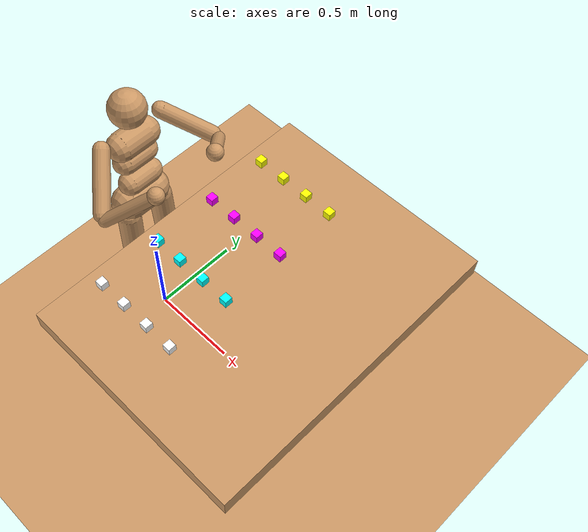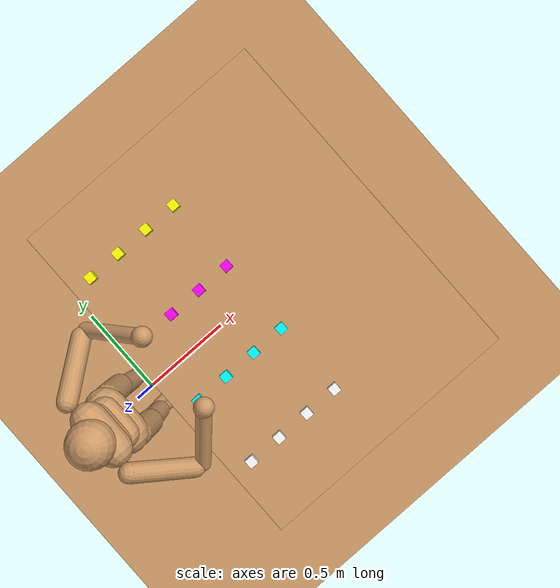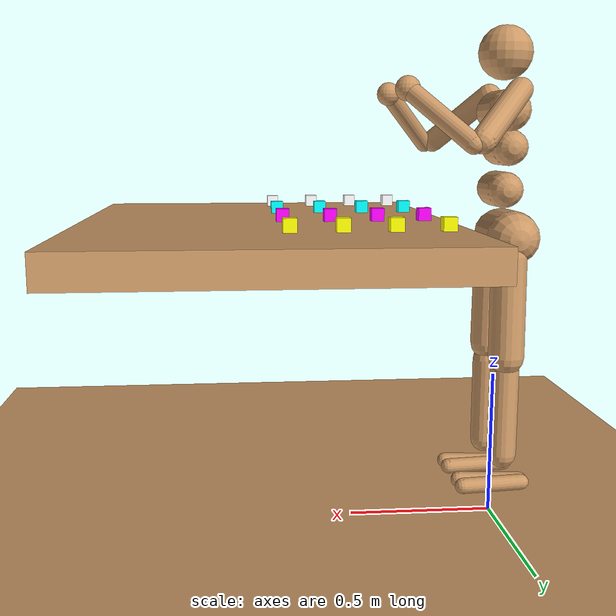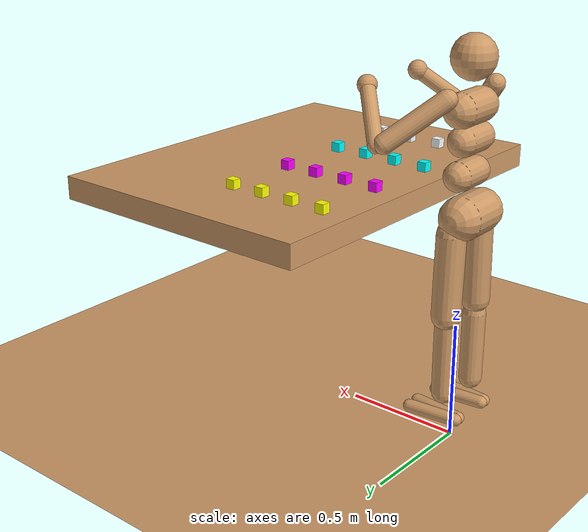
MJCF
<mujoco model='humanoid'>
    <compiler inertiafromgeom='true' angle='degree'/>

    <default>
        <joint limited='true' damping='1' armature='0'/>
        <geom contype='1' conaffinity='1' condim='1' rgba='0.8 0.6 .4 1'
        	margin="0.001" solref=".02 1" solimp=".8 .8 .01" material="geom"/>
        <motor ctrlrange='-.4 .4' ctrllimited='true'/>
    </default>

    <option gravity='0 0 0' collision='predefined' timestep='0.002' iterations="50" tolerance="1e-10" solver="Newton" jacobian="dense" cone="elliptic"/>

    <size nstack="1000000"/>

    <visual>
        <map fogstart="3" fogend="5" force="0.1" znear="0.5"/>
        <quality shadowsize="2048" offsamples="8"/>
        <global offwidth="800" offheight="800"/>
    </visual>

    <asset>
        <texture type="skybox" builtin="gradient" width="128" height="128" rgb1=".4 .6 .8"
            rgb2="0 0 0"/>
        <texture name="texgeom" type="cube" builtin="flat" mark="cross" width="127" height="1278"
            rgb1="0.8 0.6 0.4" rgb2="0.8 0.6 0.4" markrgb="1 1 1" random="0.01"/>
        <texture name="texplane" type="2d" builtin="checker" rgb1=".2 .3 .4" rgb2=".1 0.15 0.2"
            width="512" height="512"/>

        <material name='MatPlane' reflectance='0.3' texture="texplane" texrepeat="1 1" texuniform="true"/>
        <material name='geom' texture="texgeom" texuniform="true"/>
    </asset>

    <worldbody>
        <geom name='floor' pos='0 0 .1' size='5 5 .125' type='plane' material="MatPlane" condim='3'/>

        <light mode='targetbodycom' target='table' directional='false' diffuse='.8 .8 .8' specular='0.3 0.3 0.3' pos='0 0 4.0' dir='0 0 -1'/>

		<camera name='targeting' pos='2.5 0 2.5' xyaxes='0 1 0 -.5 0 1' mode='fixed'/>

		<body pos='-.01 0 1.140' name="root">

			<body name='right_foot' pos='0 .1 -1'>
				<geom name='right_foot_cap1' type='capsule' fromto='-.07 -0.02 0 0.14 -0.04 0'  size='0.027' />
				<geom name='right_foot_cap2' type='capsule' fromto='-.07 0 0 0.14  0.02 0'  size='0.027' />

				<body name='right_shin' pos='0 -0.01 0.403' >
					<geom name='right_shin1' type='capsule' fromto='0 0 -.3 0 0 0'   size='0.049' />

					<body name='right_thigh' pos='0 0 0.385' >
                        <geom name='right_thigh1' type='capsule' fromto='0 0.01 -.340 0 0 0'  size='0.06' />

						<body name='pelvis' pos='0 -.1 0.06' quat='1.000 0 -0.002 0' >
							<geom name='butt' type='capsule' fromto='-.02 .07 0 -.02 -.07 0'  size='0.09' />

							<joint name='abdomen_z' type='hinge' pos='0 0 0.160' axis='0 0 1' range='-45 45' damping='5' stiffness='20' armature='0.02' />
							<body name='lwaist' pos='.01 0 0.160' quat='1.000 0 -0.002 0' >
								<joint name='abdomen_y' type='hinge' pos='0 0 0' axis='0 1 0' range='-75 70' damping='5' stiffness='10' armature='0.02' />
								<geom name='lwaist' type='capsule' fromto='0 .06 0 0 -.06 0'  size='0.06' />

								<body name='torso' pos='0 0 .260'>
									<geom name='torso1' type='capsule' fromto='0 -.07 0 0 .07 0'  size='0.07'/>
									<geom name='head' type='sphere' pos='0 0 .19' size='.09'/> <!---head in openni--->
									<geom name='uwaist' type='capsule' fromto='-.01 -.06 -.12 -.01 .06 -.12' size='0.06'/>

									<body name='right_upper_arm' pos='0 -0.17 0.06' >  <!---r shoulder in openni--->
										<joint name='right_shoulder1' type='hinge' pos='0 0 0' axis='0 1 0'  range='-85 60' stiffness='1' armature='0.0068' />
										<joint name='right_shoulder2' type='hinge' pos='0 0 0' axis='1 0 0' range='-85 60' stiffness='1'  armature='0.0051' />
										<geom name='right_uarm1' type='capsule' fromto='0 0 0 .16 -.16 -.16'  size='0.04 0.16' />
										<body name='right_lower_arm' pos='.18 -.18 -.18' >  <!---r elbow in openni--->
											<joint name='right_elbow' type='hinge' pos='0 0 0' axis='0 -1 1' range='-90 50'  stiffness='0' armature='0.0028' />
											<geom name='right_larm' type='capsule' fromto='0.01 0.01 0.01 .17 .17 .17'  size='0.031' />
											<body name="right_hand" pos='.18 .18 .18'><!---r hand in openni--->
												<geom name='right_h' type='sphere' size='0.04'/>
											</body>
										</body>
									</body>
									<body name='left_upper_arm' pos='0 0.17 0.06' ><!---l shoulder in openni--->
										<joint name='left_shoulder1' type='hinge' pos='0 0 0' axis='0 -1 0' range='-60 85' stiffness='1' armature='0.0068' />
										<joint name='left_shoulder2' type='hinge' pos='0 0 0' axis='0 0 -1' range='-60 85'  stiffness='1' armature='0.0051' />
										<geom name='left_uarm1' type='capsule' fromto='0 0 0 .16 .16 -.16'  size='0.04 0.16' />
										<body name='left_lower_arm' pos='.18 .18 -.18' ><!---l elbow in openni--->
											<joint name='left_elbow' type='hinge' pos='0 0 0' axis='0 -1 -1' range='-90 50' stiffness='0' armature='0.0028' />
											<geom name='left_larm' type='capsule' fromto='0.01 -0.01 0.01 .17 -.17 .17'  size='0.031' />
											<body name="left_hand" pos=".18 -.18 .18"><!---l hand in openni--->
												<geom name='left_h' type='sphere'  size='0.04'/>
											</body>
										</body>
									</body>

								</body>

							</body>
						</body>

						<body name='left_thigh' pos='0 -.2 0' >
							<geom name='left_thigh1' type='capsule' fromto='0 0 0 0 -0.01 -.34'  size='0.06' />
							<body name='left_shin' pos='0 -0.01 -0.403' >
								<geom name='left_shin1' type='capsule' fromto='0 0 0 0 0 -.3'   size='0.049' />
								<body name='left_foot' pos='0 0 -.39' >
									<geom name='left_foot_cap1' type='capsule' fromto='-.07 0.02 0 0.14 0.04 0'  size='0.027' />
									<geom name='left_foot_cap2' type='capsule' fromto='-.07 0 0 0.14  -0.02 0'  size='0.027' />
								</body>
							</body>
S						</body>
					</body>
				</body>

			</body>

		</body>

		<!---Table plus objects --->
		<body name="table" pos=".8 0 1">
			<geom name="table_top" type="box" size=".6 .8 .05"/>

			<!---First column of objects--->
			<body name="target1-1" pos="-.5 -.5 .08">
				<geom type="box" size=".02 .02 .02" rgba="1 1 1 1"/>
				<joint name="targetx1-1" ref="-.4" type="slide" pos="0 0 0" axis="1 0 0" range="-.5 .5"/><!---Use to put in generalized world positions--->
				<joint name="targety1-1" ref="-.5" type="slide" pos="0 0 0" axis="0 1 0" range="-.6 .6"/>
			</body>

			<body name="target1-2" pos="-.35 -.5 .08">
				<geom type="box" size=".02 .02 .02" rgba="1 1 1 1"/>
				<joint name="targetx1-2" ref="-.35" type="slide" pos="0 0 0" axis="1 0 0" range="-.5 .5"/><!---Use to put in generalized world positions--->
				<joint name="targety1-2" ref="-.5" type="slide" pos="0 0 0" axis="0 1 0" range="-.6 .6"/>
			</body>

			<body name="target1-3" pos="-.2 -.5 .08">
				<geom type="box" size=".02 .02 .02" rgba="1 1 1 1"/>
				<joint name="targetx1-3" ref="-.2" type="slide" pos="0 0 0" axis="1 0 0" range="-.5 .5"/><!---Use to put in generalized world positions--->
				<joint name="targety1-3" ref="-.5" type="slide" pos="0 0 0" axis="0 1 0" range="-.6 .6"/>
			</body>

			<body name="target1-4" pos="-.05 -.5 .08">
				<geom type="box" size=".02 .02 .02" rgba="1 1 1 1"/>
				<joint name="targetx1-4" ref="-.05" type="slide" pos="0 0 0" axis="1 0 0" range="-.5 .5"/><!---Use to put in generalized world positions--->
				<joint name="targety1-4" ref="-.5" type="slide" pos="0 0 0" axis="0 1 0" range="-.6 .6"/>
			</body>

			<!---second column of objects--->
			<body name="target2-1" pos="-.5 -.17 .08">
				<geom type="box" size=".02 .02 .02" rgba="0 1 1 1"/>
				<joint name="targetx2-1" ref="-.4" type="slide" pos="0 0 0" axis="1 0 0" range="-.5 .5"/><!---Use to put in generalized world positions--->
				<joint name="targety2-1" ref="-.17" type="slide" pos="0 0 0" axis="0 1 0" range="-.6 .6"/>
			</body>

			<body name="target2-2" pos="-.35 -.17 .08">
				<geom type="box" size=".02 .02 .02" rgba="0 1 1 1"/>
				<joint name="targetx2-2" ref="-.35" type="slide" pos="0 0 0" axis="1 0 0" range="-.5 .5"/><!---Use to put in generalized world positions--->
				<joint name="targety2-2" ref="-.17" type="slide" pos="0 0 0" axis="0 1 0" range="-.6 .6"/>
			</body>

			<body name="target2-3" pos="-.2 -.17 .08">
				<geom type="box" size=".02 .02 .02" rgba="0 1 1 1"/>
				<joint name="targetx2-3" ref="-.2" type="slide" pos="0 0 0" axis="1 0 0" range="-.5 .5"/><!---Use to put in generalized world positions--->
				<joint name="targety2-3" ref="-.17" type="slide" pos="0 0 0" axis="0 1 0" range="-.6 .6"/>
			</body>

			<body name="target2-4" pos="-.05 -.17 .08">
				<geom type="box" size=".02 .02 .02" rgba="0 1 1 1"/>
				<joint name="targetx2-4" ref="-.05" type="slide" pos="0 0 0" axis="1 0 0" range="-.5 .5"/><!---Use to put in generalized world positions--->
				<joint name="targety2-4" ref="-.17" type="slide" pos="0 0 0" axis="0 1 0" range="-.6 .6"/>
			</body>

			<!---third column of objects--->
			<body name="target3-1" pos="-.5 .17 .08">
				<geom type="box" size=".02 .02 .02" rgba="1 0 1 1"/>
				<joint name="targetx3-1" ref="-.4" type="slide" pos="0 0 0" axis="1 0 0" range="-.5 .5"/><!---Use to put in generalized world positions--->
				<joint name="targety3-1" ref=".17" type="slide" pos="0 0 0" axis="0 1 0" range="-.6 .6"/>
			</body>

			<body name="target3-2" pos="-.35 .17 .08">
				<geom type="box" size=".02 .02 .02" rgba="1 0 1 1"/>
				<joint name="targetx3-2" ref="-.35" type="slide" pos="0 0 0" axis="1 0 0" range="-.5 .5"/><!---Use to put in generalized world positions--->
				<joint name="targety3-2" ref=".17" type="slide" pos="0 0 0" axis="0 1 0" range="-.6 .6"/>
			</body>

			<body name="target3-3" pos="-.2 .17 .08">
				<geom type="box" size=".02 .02 .02" rgba="1 0 1 1"/>
				<joint name="targetx3-3" ref="-.2" type="slide" pos="0 0 0" axis="1 0 0" range="-.5 .5"/><!---Use to put in generalized world positions--->
				<joint name="targety3-3" ref=".17" type="slide" pos="0 0 0" axis="0 1 0" range="-.6 .6"/>
			</body>

			<body name="target3-4" pos="-.05 .17 .08">
				<geom type="box" size=".02 .02 .02" rgba="1 0 1 1"/>
				<joint name="targetx3-4" ref="-.05" type="slide" pos="0 0 0" axis="1 0 0" range="-.5 .5"/><!---Use to put in generalized world positions--->
				<joint name="targety3-4" ref=".17" type="slide" pos="0 0 0" axis="0 1 0" range="-.6 .6"/>
			</body>

			<!---First column of objects--->
			<body name="target4-1" pos="-.5 .5 .08">
				<geom type="box" size=".02 .02 .02" rgba="1 1 0 1"/>
				<joint name="targetx4-1" ref="-.4" type="slide" pos="0 0 0" axis="1 0 0" range="-.5 .5"/><!---Use to put in generalized world positions--->
				<joint name="targety4-1" ref=".5" type="slide" pos="0 0 0" axis="0 1 0" range="-.6 .6"/>
			</body>

			<body name="target4-2" pos="-.35 .5 .08">
				<geom type="box" size=".02 .02 .02" rgba="1 1 0 1"/>
				<joint name="targetx4-2" ref="-.35" type="slide" pos="0 0 0" axis="1 0 0" range="-.5 .5"/><!---Use to put in generalized world positions--->
				<joint name="targety4-2" ref=".5" type="slide" pos="0 0 0" axis="0 1 0" range="-.6 .6"/>
			</body>

			<body name="target4-3" pos="-.2 .5 .08">
				<geom type="box" size=".02 .02 .02" rgba="1 1 0 1"/>
				<joint name="targetx4-3" ref="-.2" type="slide" pos="0 0 0" axis="1 0 0" range="-.5 .5"/><!---Use to put in generalized world positions--->
				<joint name="targety4-3" ref=".5" type="slide" pos="0 0 0" axis="0 1 0" range="-.6 .6"/>
			</body>

			<body name="target4-4" pos="-.05 .5 .08">
				<geom type="box" size=".02 .02 .02" rgba="1 1 0 1"/>
				<joint name="targetx4-4" ref="-.05" type="slide" pos="0 0 0" axis="1 0 0" range="-.5 .5"/><!---Use to put in generalized world positions--->
				<joint name="targety4-4" ref=".5" type="slide" pos="0 0 0" axis="0 1 0" range="-.6 .6"/>
			</body>

		</body>
    </worldbody>

    <actuator>
        <motor name='abdomen_y'       gear='200' joint='abdomen_y' />
        <motor name='abdomen_z'       gear='200' joint='abdomen_z' />
        <motor name='right_shoulder1' gear='100' joint='right_shoulder1' />
        <motor name='right_shoulder2' gear='100' joint='right_shoulder2' />
        <motor name='right_elbow'     gear='200' joint='right_elbow' />
        <motor name='left_shoulder1'  gear='100' joint='left_shoulder1' />
        <motor name='left_shoulder2'  gear='100' joint='left_shoulder2' />
        <motor name='left_elbow'      gear='200' joint='left_elbow' />
    </actuator>

</mujoco>
